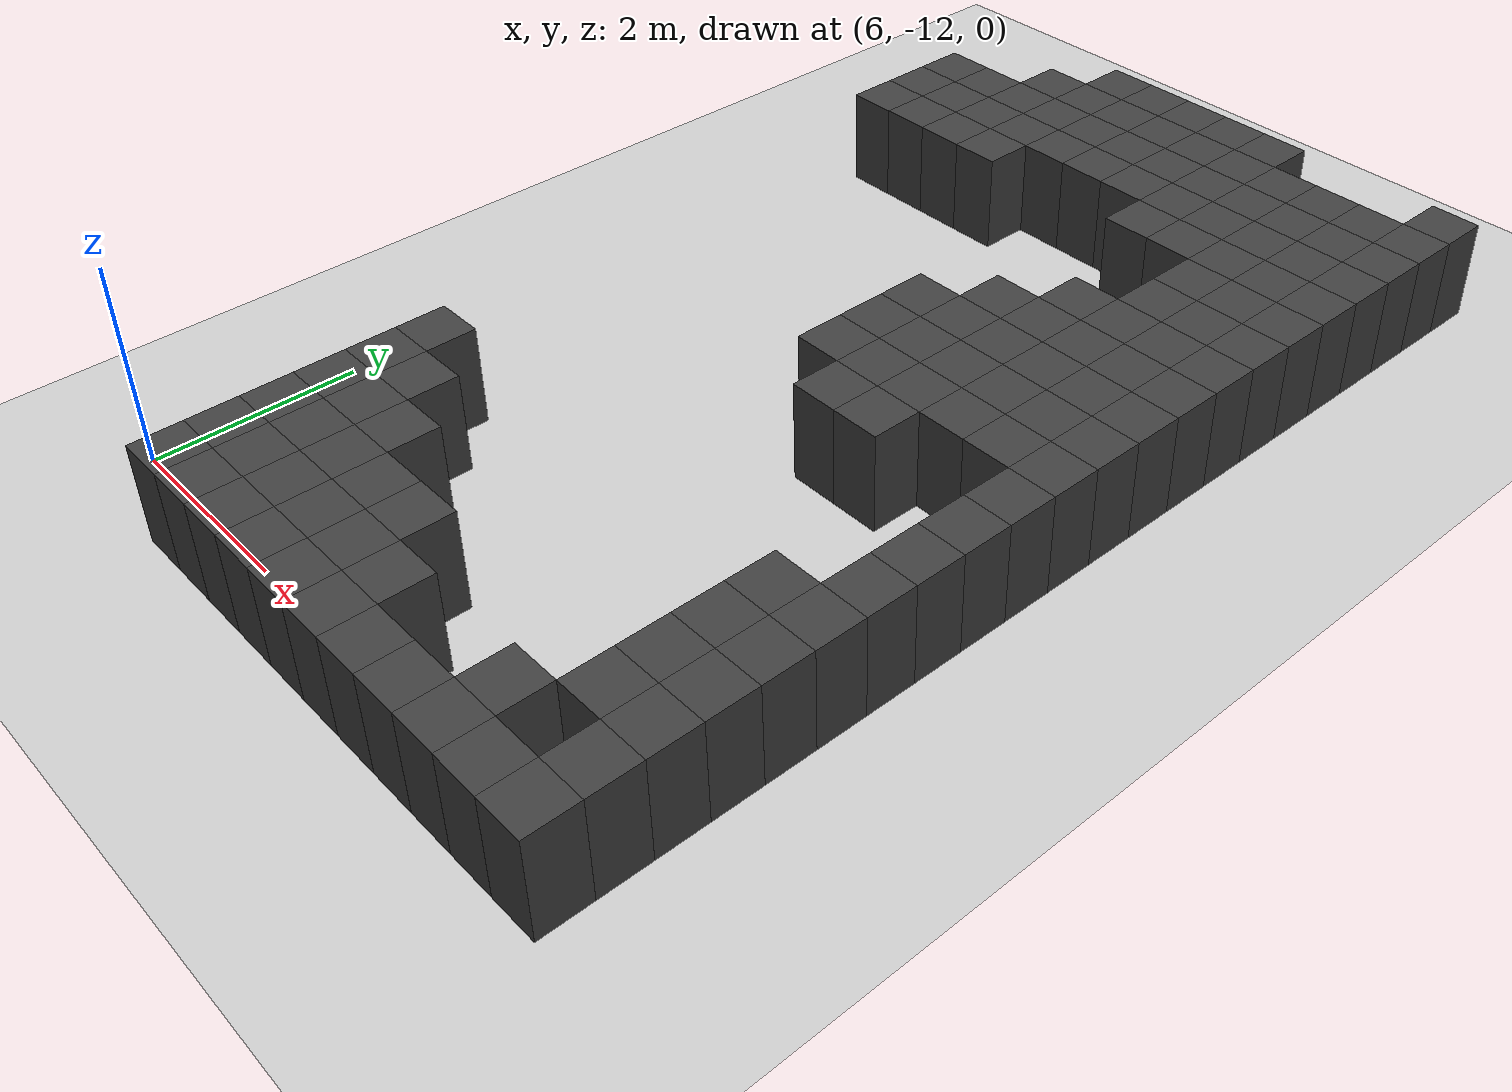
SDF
<sdf version="1.7">
 <world name="map_9713">
  <model name="ground_plane">
   <static>true</static>
   <link name="link">
    <collision name="collision">
     <geometry><plane><normal>0 0 1</normal><size>200 200</size></plane></geometry>
    </collision>
    <visual name="visual">
     <geometry><plane><normal>0 0 1</normal><size>200 200</size></plane></geometry>
     <material><ambient>0.8 0.8 0.8 1</ambient><diffuse>0.8 0.8 0.8 1</diffuse></material>
    </visual>
   </link>
  </model>
  <model name="maze_environment">
   <static>true</static>
   <link name="wall_527">
    <pose>8.250 -1.750 0.500 0 0 0</pose>
    <collision name="col"><geometry><box><size>0.5 0.5 1.0</size></box></geometry></collision>
    <visual name="vis">
     <geometry><box><size>0.5 0.5 1.0</size></box></geometry>
     <material><ambient>0.15 0.15 0.15 1</ambient><diffuse>0.25 0.25 0.25 1</diffuse></material>
    </visual>
   </link>
   <link name="wall_528">
    <pose>8.750 -1.750 0.500 0 0 0</pose>
    <collision name="col"><geometry><box><size>0.5 0.5 1.0</size></box></geometry></collision>
    <visual name="vis">
     <geometry><box><size>0.5 0.5 1.0</size></box></geometry>
     <material><ambient>0.15 0.15 0.15 1</ambient><diffuse>0.25 0.25 0.25 1</diffuse></material>
    </visual>
   </link>
   <link name="wall_529">
    <pose>9.250 -1.750 0.500 0 0 0</pose>
    <collision name="col"><geometry><box><size>0.5 0.5 1.0</size></box></geometry></collision>
    <visual name="vis">
     <geometry><box><size>0.5 0.5 1.0</size></box></geometry>
     <material><ambient>0.15 0.15 0.15 1</ambient><diffuse>0.25 0.25 0.25 1</diffuse></material>
    </visual>
   </link>
   <link name="wall_530">
    <pose>9.750 -1.750 0.500 0 0 0</pose>
    <collision name="col"><geometry><box><size>0.5 0.5 1.0</size></box></geometry></collision>
    <visual name="vis">
     <geometry><box><size>0.5 0.5 1.0</size></box></geometry>
     <material><ambient>0.15 0.15 0.15 1</ambient><diffuse>0.25 0.25 0.25 1</diffuse></material>
    </visual>
   </link>
   <link name="wall_531">
    <pose>10.250 -1.750 0.500 0 0 0</pose>
    <collision name="col"><geometry><box><size>0.5 0.5 1.0</size></box></geometry></collision>
    <visual name="vis">
     <geometry><box><size>0.5 0.5 1.0</size></box></geometry>
     <material><ambient>0.15 0.15 0.15 1</ambient><diffuse>0.25 0.25 0.25 1</diffuse></material>
    </visual>
   </link>
   <link name="wall_532">
    <pose>12.250 -1.750 0.500 0 0 0</pose>
    <collision name="col"><geometry><box><size>0.5 0.5 1.0</size></box></geometry></collision>
    <visual name="vis">
     <geometry><box><size>0.5 0.5 1.0</size></box></geometry>
     <material><ambient>0.15 0.15 0.15 1</ambient><diffuse>0.25 0.25 0.25 1</diffuse></material>
    </visual>
   </link>
   <link name="wall_547">
    <pose>7.750 -2.250 0.500 0 0 0</pose>
    <collision name="col"><geometry><box><size>0.5 0.5 1.0</size></box></geometry></collision>
    <visual name="vis">
     <geometry><box><size>0.5 0.5 1.0</size></box></geometry>
     <material><ambient>0.15 0.15 0.15 1</ambient><diffuse>0.25 0.25 0.25 1</diffuse></material>
    </visual>
   </link>
   <link name="wall_548">
    <pose>8.250 -2.250 0.500 0 0 0</pose>
    <collision name="col"><geometry><box><size>0.5 0.5 1.0</size></box></geometry></collision>
    <visual name="vis">
     <geometry><box><size>0.5 0.5 1.0</size></box></geometry>
     <material><ambient>0.15 0.15 0.15 1</ambient><diffuse>0.25 0.25 0.25 1</diffuse></material>
    </visual>
   </link>
   <link name="wall_549">
    <pose>8.750 -2.250 0.500 0 0 0</pose>
    <collision name="col"><geometry><box><size>0.5 0.5 1.0</size></box></geometry></collision>
    <visual name="vis">
     <geometry><box><size>0.5 0.5 1.0</size></box></geometry>
     <material><ambient>0.15 0.15 0.15 1</ambient><diffuse>0.25 0.25 0.25 1</diffuse></material>
    </visual>
   </link>
   <link name="wall_550">
    <pose>9.250 -2.250 0.500 0 0 0</pose>
    <collision name="col"><geometry><box><size>0.5 0.5 1.0</size></box></geometry></collision>
    <visual name="vis">
     <geometry><box><size>0.5 0.5 1.0</size></box></geometry>
     <material><ambient>0.15 0.15 0.15 1</ambient><diffuse>0.25 0.25 0.25 1</diffuse></material>
    </visual>
   </link>
   <link name="wall_551">
    <pose>9.750 -2.250 0.500 0 0 0</pose>
    <collision name="col"><geometry><box><size>0.5 0.5 1.0</size></box></geometry></collision>
    <visual name="vis">
     <geometry><box><size>0.5 0.5 1.0</size></box></geometry>
     <material><ambient>0.15 0.15 0.15 1</ambient><diffuse>0.25 0.25 0.25 1</diffuse></material>
    </visual>
   </link>
   <link name="wall_552">
    <pose>10.250 -2.250 0.500 0 0 0</pose>
    <collision name="col"><geometry><box><size>0.5 0.5 1.0</size></box></geometry></collision>
    <visual name="vis">
     <geometry><box><size>0.5 0.5 1.0</size></box></geometry>
     <material><ambient>0.15 0.15 0.15 1</ambient><diffuse>0.25 0.25 0.25 1</diffuse></material>
    </visual>
   </link>
   <link name="wall_553">
    <pose>10.750 -2.250 0.500 0 0 0</pose>
    <collision name="col"><geometry><box><size>0.5 0.5 1.0</size></box></geometry></collision>
    <visual name="vis">
     <geometry><box><size>0.5 0.5 1.0</size></box></geometry>
     <material><ambient>0.15 0.15 0.15 1</ambient><diffuse>0.25 0.25 0.25 1</diffuse></material>
    </visual>
   </link>
   <link name="wall_554">
    <pose>11.250 -2.250 0.500 0 0 0</pose>
    <collision name="col"><geometry><box><size>0.5 0.5 1.0</size></box></geometry></collision>
    <visual name="vis">
     <geometry><box><size>0.5 0.5 1.0</size></box></geometry>
     <material><ambient>0.15 0.15 0.15 1</ambient><diffuse>0.25 0.25 0.25 1</diffuse></material>
    </visual>
   </link>
   <link name="wall_555">
    <pose>11.750 -2.250 0.500 0 0 0</pose>
    <collision name="col"><geometry><box><size>0.5 0.5 1.0</size></box></geometry></collision>
    <visual name="vis">
     <geometry><box><size>0.5 0.5 1.0</size></box></geometry>
     <material><ambient>0.15 0.15 0.15 1</ambient><diffuse>0.25 0.25 0.25 1</diffuse></material>
    </visual>
   </link>
   <link name="wall_556">
    <pose>12.250 -2.250 0.500 0 0 0</pose>
    <collision name="col"><geometry><box><size>0.5 0.5 1.0</size></box></geometry></collision>
    <visual name="vis">
     <geometry><box><size>0.5 0.5 1.0</size></box></geometry>
     <material><ambient>0.15 0.15 0.15 1</ambient><diffuse>0.25 0.25 0.25 1</diffuse></material>
    </visual>
   </link>
   <link name="wall_567">
    <pose>6.750 -2.750 0.500 0 0 0</pose>
    <collision name="col"><geometry><box><size>0.5 0.5 1.0</size></box></geometry></collision>
    <visual name="vis">
     <geometry><box><size>0.5 0.5 1.0</size></box></geometry>
     <material><ambient>0.15 0.15 0.15 1</ambient><diffuse>0.25 0.25 0.25 1</diffuse></material>
    </visual>
   </link>
   <link name="wall_568">
    <pose>7.250 -2.750 0.500 0 0 0</pose>
    <collision name="col"><geometry><box><size>0.5 0.5 1.0</size></box></geometry></collision>
    <visual name="vis">
     <geometry><box><size>0.5 0.5 1.0</size></box></geometry>
     <material><ambient>0.15 0.15 0.15 1</ambient><diffuse>0.25 0.25 0.25 1</diffuse></material>
    </visual>
   </link>
   <link name="wall_569">
    <pose>7.750 -2.750 0.500 0 0 0</pose>
    <collision name="col"><geometry><box><size>0.5 0.5 1.0</size></box></geometry></collision>
    <visual name="vis">
     <geometry><box><size>0.5 0.5 1.0</size></box></geometry>
     <material><ambient>0.15 0.15 0.15 1</ambient><diffuse>0.25 0.25 0.25 1</diffuse></material>
    </visual>
   </link>
   <link name="wall_570">
    <pose>8.250 -2.750 0.500 0 0 0</pose>
    <collision name="col"><geometry><box><size>0.5 0.5 1.0</size></box></geometry></collision>
    <visual name="vis">
     <geometry><box><size>0.5 0.5 1.0</size></box></geometry>
     <material><ambient>0.15 0.15 0.15 1</ambient><diffuse>0.25 0.25 0.25 1</diffuse></material>
    </visual>
   </link>
   <link name="wall_571">
    <pose>8.750 -2.750 0.500 0 0 0</pose>
    <collision name="col"><geometry><box><size>0.5 0.5 1.0</size></box></geometry></collision>
    <visual name="vis">
     <geometry><box><size>0.5 0.5 1.0</size></box></geometry>
     <material><ambient>0.15 0.15 0.15 1</ambient><diffuse>0.25 0.25 0.25 1</diffuse></material>
    </visual>
   </link>
   <link name="wall_572">
    <pose>9.250 -2.750 0.500 0 0 0</pose>
    <collision name="col"><geometry><box><size>0.5 0.5 1.0</size></box></geometry></collision>
    <visual name="vis">
     <geometry><box><size>0.5 0.5 1.0</size></box></geometry>
     <material><ambient>0.15 0.15 0.15 1</ambient><diffuse>0.25 0.25 0.25 1</diffuse></material>
    </visual>
   </link>
   <link name="wall_573">
    <pose>9.750 -2.750 0.500 0 0 0</pose>
    <collision name="col"><geometry><box><size>0.5 0.5 1.0</size></box></geometry></collision>
    <visual name="vis">
     <geometry><box><size>0.5 0.5 1.0</size></box></geometry>
     <material><ambient>0.15 0.15 0.15 1</ambient><diffuse>0.25 0.25 0.25 1</diffuse></material>
    </visual>
   </link>
   <link name="wall_574">
    <pose>10.250 -2.750 0.500 0 0 0</pose>
    <collision name="col"><geometry><box><size>0.5 0.5 1.0</size></box></geometry></collision>
    <visual name="vis">
     <geometry><box><size>0.5 0.5 1.0</size></box></geometry>
     <material><ambient>0.15 0.15 0.15 1</ambient><diffuse>0.25 0.25 0.25 1</diffuse></material>
    </visual>
   </link>
   <link name="wall_575">
    <pose>10.750 -2.750 0.500 0 0 0</pose>
    <collision name="col"><geometry><box><size>0.5 0.5 1.0</size></box></geometry></collision>
    <visual name="vis">
     <geometry><box><size>0.5 0.5 1.0</size></box></geometry>
     <material><ambient>0.15 0.15 0.15 1</ambient><diffuse>0.25 0.25 0.25 1</diffuse></material>
    </visual>
   </link>
   <link name="wall_576">
    <pose>11.250 -2.750 0.500 0 0 0</pose>
    <collision name="col"><geometry><box><size>0.5 0.5 1.0</size></box></geometry></collision>
    <visual name="vis">
     <geometry><box><size>0.5 0.5 1.0</size></box></geometry>
     <material><ambient>0.15 0.15 0.15 1</ambient><diffuse>0.25 0.25 0.25 1</diffuse></material>
    </visual>
   </link>
   <link name="wall_577">
    <pose>11.750 -2.750 0.500 0 0 0</pose>
    <collision name="col"><geometry><box><size>0.5 0.5 1.0</size></box></geometry></collision>
    <visual name="vis">
     <geometry><box><size>0.5 0.5 1.0</size></box></geometry>
     <material><ambient>0.15 0.15 0.15 1</ambient><diffuse>0.25 0.25 0.25 1</diffuse></material>
    </visual>
   </link>
   <link name="wall_578">
    <pose>12.250 -2.750 0.500 0 0 0</pose>
    <collision name="col"><geometry><box><size>0.5 0.5 1.0</size></box></geometry></collision>
    <visual name="vis">
     <geometry><box><size>0.5 0.5 1.0</size></box></geometry>
     <material><ambient>0.15 0.15 0.15 1</ambient><diffuse>0.25 0.25 0.25 1</diffuse></material>
    </visual>
   </link>
   <link name="wall_589">
    <pose>6.750 -3.250 0.500 0 0 0</pose>
    <collision name="col"><geometry><box><size>0.5 0.5 1.0</size></box></geometry></collision>
    <visual name="vis">
     <geometry><box><size>0.5 0.5 1.0</size></box></geometry>
     <material><ambient>0.15 0.15 0.15 1</ambient><diffuse>0.25 0.25 0.25 1</diffuse></material>
    </visual>
   </link>
   <link name="wall_590">
    <pose>7.250 -3.250 0.500 0 0 0</pose>
    <collision name="col"><geometry><box><size>0.5 0.5 1.0</size></box></geometry></collision>
    <visual name="vis">
     <geometry><box><size>0.5 0.5 1.0</size></box></geometry>
     <material><ambient>0.15 0.15 0.15 1</ambient><diffuse>0.25 0.25 0.25 1</diffuse></material>
    </visual>
   </link>
   <link name="wall_591">
    <pose>7.750 -3.250 0.500 0 0 0</pose>
    <collision name="col"><geometry><box><size>0.5 0.5 1.0</size></box></geometry></collision>
    <visual name="vis">
     <geometry><box><size>0.5 0.5 1.0</size></box></geometry>
     <material><ambient>0.15 0.15 0.15 1</ambient><diffuse>0.25 0.25 0.25 1</diffuse></material>
    </visual>
   </link>
   <link name="wall_592">
    <pose>8.250 -3.250 0.500 0 0 0</pose>
    <collision name="col"><geometry><box><size>0.5 0.5 1.0</size></box></geometry></collision>
    <visual name="vis">
     <geometry><box><size>0.5 0.5 1.0</size></box></geometry>
     <material><ambient>0.15 0.15 0.15 1</ambient><diffuse>0.25 0.25 0.25 1</diffuse></material>
    </visual>
   </link>
   <link name="wall_593">
    <pose>8.750 -3.250 0.500 0 0 0</pose>
    <collision name="col"><geometry><box><size>0.5 0.5 1.0</size></box></geometry></collision>
    <visual name="vis">
     <geometry><box><size>0.5 0.5 1.0</size></box></geometry>
     <material><ambient>0.15 0.15 0.15 1</ambient><diffuse>0.25 0.25 0.25 1</diffuse></material>
    </visual>
   </link>
   <link name="wall_594">
    <pose>9.250 -3.250 0.500 0 0 0</pose>
    <collision name="col"><geometry><box><size>0.5 0.5 1.0</size></box></geometry></collision>
    <visual name="vis">
     <geometry><box><size>0.5 0.5 1.0</size></box></geometry>
     <material><ambient>0.15 0.15 0.15 1</ambient><diffuse>0.25 0.25 0.25 1</diffuse></material>
    </visual>
   </link>
   <link name="wall_595">
    <pose>9.750 -3.250 0.500 0 0 0</pose>
    <collision name="col"><geometry><box><size>0.5 0.5 1.0</size></box></geometry></collision>
    <visual name="vis">
     <geometry><box><size>0.5 0.5 1.0</size></box></geometry>
     <material><ambient>0.15 0.15 0.15 1</ambient><diffuse>0.25 0.25 0.25 1</diffuse></material>
    </visual>
   </link>
   <link name="wall_596">
    <pose>10.250 -3.250 0.500 0 0 0</pose>
    <collision name="col"><geometry><box><size>0.5 0.5 1.0</size></box></geometry></collision>
    <visual name="vis">
     <geometry><box><size>0.5 0.5 1.0</size></box></geometry>
     <material><ambient>0.15 0.15 0.15 1</ambient><diffuse>0.25 0.25 0.25 1</diffuse></material>
    </visual>
   </link>
   <link name="wall_597">
    <pose>10.750 -3.250 0.500 0 0 0</pose>
    <collision name="col"><geometry><box><size>0.5 0.5 1.0</size></box></geometry></collision>
    <visual name="vis">
     <geometry><box><size>0.5 0.5 1.0</size></box></geometry>
     <material><ambient>0.15 0.15 0.15 1</ambient><diffuse>0.25 0.25 0.25 1</diffuse></material>
    </visual>
   </link>
   <link name="wall_598">
    <pose>11.250 -3.250 0.500 0 0 0</pose>
    <collision name="col"><geometry><box><size>0.5 0.5 1.0</size></box></geometry></collision>
    <visual name="vis">
     <geometry><box><size>0.5 0.5 1.0</size></box></geometry>
     <material><ambient>0.15 0.15 0.15 1</ambient><diffuse>0.25 0.25 0.25 1</diffuse></material>
    </visual>
   </link>
   <link name="wall_599">
    <pose>11.750 -3.250 0.500 0 0 0</pose>
    <collision name="col"><geometry><box><size>0.5 0.5 1.0</size></box></geometry></collision>
    <visual name="vis">
     <geometry><box><size>0.5 0.5 1.0</size></box></geometry>
     <material><ambient>0.15 0.15 0.15 1</ambient><diffuse>0.25 0.25 0.25 1</diffuse></material>
    </visual>
   </link>
   <link name="wall_600">
    <pose>12.250 -3.250 0.500 0 0 0</pose>
    <collision name="col"><geometry><box><size>0.5 0.5 1.0</size></box></geometry></collision>
    <visual name="vis">
     <geometry><box><size>0.5 0.5 1.0</size></box></geometry>
     <material><ambient>0.15 0.15 0.15 1</ambient><diffuse>0.25 0.25 0.25 1</diffuse></material>
    </visual>
   </link>
   <link name="wall_612">
    <pose>6.750 -3.750 0.500 0 0 0</pose>
    <collision name="col"><geometry><box><size>0.5 0.5 1.0</size></box></geometry></collision>
    <visual name="vis">
     <geometry><box><size>0.5 0.5 1.0</size></box></geometry>
     <material><ambient>0.15 0.15 0.15 1</ambient><diffuse>0.25 0.25 0.25 1</diffuse></material>
    </visual>
   </link>
   <link name="wall_613">
    <pose>7.250 -3.750 0.500 0 0 0</pose>
    <collision name="col"><geometry><box><size>0.5 0.5 1.0</size></box></geometry></collision>
    <visual name="vis">
     <geometry><box><size>0.5 0.5 1.0</size></box></geometry>
     <material><ambient>0.15 0.15 0.15 1</ambient><diffuse>0.25 0.25 0.25 1</diffuse></material>
    </visual>
   </link>
   <link name="wall_614">
    <pose>7.750 -3.750 0.500 0 0 0</pose>
    <collision name="col"><geometry><box><size>0.5 0.5 1.0</size></box></geometry></collision>
    <visual name="vis">
     <geometry><box><size>0.5 0.5 1.0</size></box></geometry>
     <material><ambient>0.15 0.15 0.15 1</ambient><diffuse>0.25 0.25 0.25 1</diffuse></material>
    </visual>
   </link>
   <link name="wall_615">
    <pose>8.250 -3.750 0.500 0 0 0</pose>
    <collision name="col"><geometry><box><size>0.5 0.5 1.0</size></box></geometry></collision>
    <visual name="vis">
     <geometry><box><size>0.5 0.5 1.0</size></box></geometry>
     <material><ambient>0.15 0.15 0.15 1</ambient><diffuse>0.25 0.25 0.25 1</diffuse></material>
    </visual>
   </link>
   <link name="wall_616">
    <pose>10.250 -3.750 0.500 0 0 0</pose>
    <collision name="col"><geometry><box><size>0.5 0.5 1.0</size></box></geometry></collision>
    <visual name="vis">
     <geometry><box><size>0.5 0.5 1.0</size></box></geometry>
     <material><ambient>0.15 0.15 0.15 1</ambient><diffuse>0.25 0.25 0.25 1</diffuse></material>
    </visual>
   </link>
   <link name="wall_617">
    <pose>10.750 -3.750 0.500 0 0 0</pose>
    <collision name="col"><geometry><box><size>0.5 0.5 1.0</size></box></geometry></collision>
    <visual name="vis">
     <geometry><box><size>0.5 0.5 1.0</size></box></geometry>
     <material><ambient>0.15 0.15 0.15 1</ambient><diffuse>0.25 0.25 0.25 1</diffuse></material>
    </visual>
   </link>
   <link name="wall_618">
    <pose>11.250 -3.750 0.500 0 0 0</pose>
    <collision name="col"><geometry><box><size>0.5 0.5 1.0</size></box></geometry></collision>
    <visual name="vis">
     <geometry><box><size>0.5 0.5 1.0</size></box></geometry>
     <material><ambient>0.15 0.15 0.15 1</ambient><diffuse>0.25 0.25 0.25 1</diffuse></material>
    </visual>
   </link>
   <link name="wall_619">
    <pose>11.750 -3.750 0.500 0 0 0</pose>
    <collision name="col"><geometry><box><size>0.5 0.5 1.0</size></box></geometry></collision>
    <visual name="vis">
     <geometry><box><size>0.5 0.5 1.0</size></box></geometry>
     <material><ambient>0.15 0.15 0.15 1</ambient><diffuse>0.25 0.25 0.25 1</diffuse></material>
    </visual>
   </link>
   <link name="wall_620">
    <pose>12.250 -3.750 0.500 0 0 0</pose>
    <collision name="col"><geometry><box><size>0.5 0.5 1.0</size></box></geometry></collision>
    <visual name="vis">
     <geometry><box><size>0.5 0.5 1.0</size></box></geometry>
     <material><ambient>0.15 0.15 0.15 1</ambient><diffuse>0.25 0.25 0.25 1</diffuse></material>
    </visual>
   </link>
   <link name="wall_634">
    <pose>11.250 -4.250 0.500 0 0 0</pose>
    <collision name="col"><geometry><box><size>0.5 0.5 1.0</size></box></geometry></collision>
    <visual name="vis">
     <geometry><box><size>0.5 0.5 1.0</size></box></geometry>
     <material><ambient>0.15 0.15 0.15 1</ambient><diffuse>0.25 0.25 0.25 1</diffuse></material>
    </visual>
   </link>
   <link name="wall_635">
    <pose>11.750 -4.250 0.500 0 0 0</pose>
    <collision name="col"><geometry><box><size>0.5 0.5 1.0</size></box></geometry></collision>
    <visual name="vis">
     <geometry><box><size>0.5 0.5 1.0</size></box></geometry>
     <material><ambient>0.15 0.15 0.15 1</ambient><diffuse>0.25 0.25 0.25 1</diffuse></material>
    </visual>
   </link>
   <link name="wall_636">
    <pose>12.250 -4.250 0.500 0 0 0</pose>
    <collision name="col"><geometry><box><size>0.5 0.5 1.0</size></box></geometry></collision>
    <visual name="vis">
     <geometry><box><size>0.5 0.5 1.0</size></box></geometry>
     <material><ambient>0.15 0.15 0.15 1</ambient><diffuse>0.25 0.25 0.25 1</diffuse></material>
    </visual>
   </link>
   <link name="wall_649">
    <pose>11.250 -4.750 0.500 0 0 0</pose>
    <collision name="col"><geometry><box><size>0.5 0.5 1.0</size></box></geometry></collision>
    <visual name="vis">
     <geometry><box><size>0.5 0.5 1.0</size></box></geometry>
     <material><ambient>0.15 0.15 0.15 1</ambient><diffuse>0.25 0.25 0.25 1</diffuse></material>
    </visual>
   </link>
   <link name="wall_650">
    <pose>11.750 -4.750 0.500 0 0 0</pose>
    <collision name="col"><geometry><box><size>0.5 0.5 1.0</size></box></geometry></collision>
    <visual name="vis">
     <geometry><box><size>0.5 0.5 1.0</size></box></geometry>
     <material><ambient>0.15 0.15 0.15 1</ambient><diffuse>0.25 0.25 0.25 1</diffuse></material>
    </visual>
   </link>
   <link name="wall_651">
    <pose>12.250 -4.750 0.500 0 0 0</pose>
    <collision name="col"><geometry><box><size>0.5 0.5 1.0</size></box></geometry></collision>
    <visual name="vis">
     <geometry><box><size>0.5 0.5 1.0</size></box></geometry>
     <material><ambient>0.15 0.15 0.15 1</ambient><diffuse>0.25 0.25 0.25 1</diffuse></material>
    </visual>
   </link>
   <link name="wall_664">
    <pose>10.750 -5.250 0.500 0 0 0</pose>
    <collision name="col"><geometry><box><size>0.5 0.5 1.0</size></box></geometry></collision>
    <visual name="vis">
     <geometry><box><size>0.5 0.5 1.0</size></box></geometry>
     <material><ambient>0.15 0.15 0.15 1</ambient><diffuse>0.25 0.25 0.25 1</diffuse></material>
    </visual>
   </link>
   <link name="wall_665">
    <pose>11.250 -5.250 0.500 0 0 0</pose>
    <collision name="col"><geometry><box><size>0.5 0.5 1.0</size></box></geometry></collision>
    <visual name="vis">
     <geometry><box><size>0.5 0.5 1.0</size></box></geometry>
     <material><ambient>0.15 0.15 0.15 1</ambient><diffuse>0.25 0.25 0.25 1</diffuse></material>
    </visual>
   </link>
   <link name="wall_666">
    <pose>11.750 -5.250 0.500 0 0 0</pose>
    <collision name="col"><geometry><box><size>0.5 0.5 1.0</size></box></geometry></collision>
    <visual name="vis">
     <geometry><box><size>0.5 0.5 1.0</size></box></geometry>
     <material><ambient>0.15 0.15 0.15 1</ambient><diffuse>0.25 0.25 0.25 1</diffuse></material>
    </visual>
   </link>
   <link name="wall_667">
    <pose>12.250 -5.250 0.500 0 0 0</pose>
    <collision name="col"><geometry><box><size>0.5 0.5 1.0</size></box></geometry></collision>
    <visual name="vis">
     <geometry><box><size>0.5 0.5 1.0</size></box></geometry>
     <material><ambient>0.15 0.15 0.15 1</ambient><diffuse>0.25 0.25 0.25 1</diffuse></material>
    </visual>
   </link>
   <link name="wall_682">
    <pose>10.250 -5.750 0.500 0 0 0</pose>
    <collision name="col"><geometry><box><size>0.5 0.5 1.0</size></box></geometry></collision>
    <visual name="vis">
     <geometry><box><size>0.5 0.5 1.0</size></box></geometry>
     <material><ambient>0.15 0.15 0.15 1</ambient><diffuse>0.25 0.25 0.25 1</diffuse></material>
    </visual>
   </link>
   <link name="wall_683">
    <pose>10.750 -5.750 0.500 0 0 0</pose>
    <collision name="col"><geometry><box><size>0.5 0.5 1.0</size></box></geometry></collision>
    <visual name="vis">
     <geometry><box><size>0.5 0.5 1.0</size></box></geometry>
     <material><ambient>0.15 0.15 0.15 1</ambient><diffuse>0.25 0.25 0.25 1</diffuse></material>
    </visual>
   </link>
   <link name="wall_684">
    <pose>11.250 -5.750 0.500 0 0 0</pose>
    <collision name="col"><geometry><box><size>0.5 0.5 1.0</size></box></geometry></collision>
    <visual name="vis">
     <geometry><box><size>0.5 0.5 1.0</size></box></geometry>
     <material><ambient>0.15 0.15 0.15 1</ambient><diffuse>0.25 0.25 0.25 1</diffuse></material>
    </visual>
   </link>
   <link name="wall_685">
    <pose>11.750 -5.750 0.500 0 0 0</pose>
    <collision name="col"><geometry><box><size>0.5 0.5 1.0</size></box></geometry></collision>
    <visual name="vis">
     <geometry><box><size>0.5 0.5 1.0</size></box></geometry>
     <material><ambient>0.15 0.15 0.15 1</ambient><diffuse>0.25 0.25 0.25 1</diffuse></material>
    </visual>
   </link>
   <link name="wall_686">
    <pose>12.250 -5.750 0.500 0 0 0</pose>
    <collision name="col"><geometry><box><size>0.5 0.5 1.0</size></box></geometry></collision>
    <visual name="vis">
     <geometry><box><size>0.5 0.5 1.0</size></box></geometry>
     <material><ambient>0.15 0.15 0.15 1</ambient><diffuse>0.25 0.25 0.25 1</diffuse></material>
    </visual>
   </link>
   <link name="wall_705">
    <pose>9.750 -6.250 0.500 0 0 0</pose>
    <collision name="col"><geometry><box><size>0.5 0.5 1.0</size></box></geometry></collision>
    <visual name="vis">
     <geometry><box><size>0.5 0.5 1.0</size></box></geometry>
     <material><ambient>0.15 0.15 0.15 1</ambient><diffuse>0.25 0.25 0.25 1</diffuse></material>
    </visual>
   </link>
   <link name="wall_706">
    <pose>10.250 -6.250 0.500 0 0 0</pose>
    <collision name="col"><geometry><box><size>0.5 0.5 1.0</size></box></geometry></collision>
    <visual name="vis">
     <geometry><box><size>0.5 0.5 1.0</size></box></geometry>
     <material><ambient>0.15 0.15 0.15 1</ambient><diffuse>0.25 0.25 0.25 1</diffuse></material>
    </visual>
   </link>
   <link name="wall_707">
    <pose>10.750 -6.250 0.500 0 0 0</pose>
    <collision name="col"><geometry><box><size>0.5 0.5 1.0</size></box></geometry></collision>
    <visual name="vis">
     <geometry><box><size>0.5 0.5 1.0</size></box></geometry>
     <material><ambient>0.15 0.15 0.15 1</ambient><diffuse>0.25 0.25 0.25 1</diffuse></material>
    </visual>
   </link>
   <link name="wall_708">
    <pose>11.250 -6.250 0.500 0 0 0</pose>
    <collision name="col"><geometry><box><size>0.5 0.5 1.0</size></box></geometry></collision>
    <visual name="vis">
     <geometry><box><size>0.5 0.5 1.0</size></box></geometry>
     <material><ambient>0.15 0.15 0.15 1</ambient><diffuse>0.25 0.25 0.25 1</diffuse></material>
    </visual>
   </link>
   <link name="wall_709">
    <pose>11.750 -6.250 0.500 0 0 0</pose>
    <collision name="col"><geometry><box><size>0.5 0.5 1.0</size></box></geometry></collision>
    <visual name="vis">
     <geometry><box><size>0.5 0.5 1.0</size></box></geometry>
     <material><ambient>0.15 0.15 0.15 1</ambient><diffuse>0.25 0.25 0.25 1</diffuse></material>
    </visual>
   </link>
   <link name="wall_710">
    <pose>12.250 -6.250 0.500 0 0 0</pose>
    <collision name="col"><geometry><box><size>0.5 0.5 1.0</size></box></geometry></collision>
    <visual name="vis">
     <geometry><box><size>0.5 0.5 1.0</size></box></geometry>
     <material><ambient>0.15 0.15 0.15 1</ambient><diffuse>0.25 0.25 0.25 1</diffuse></material>
    </visual>
   </link>
   <link name="wall_735">
    <pose>9.750 -6.750 0.500 0 0 0</pose>
    <collision name="col"><geometry><box><size>0.5 0.5 1.0</size></box></geometry></collision>
    <visual name="vis">
     <geometry><box><size>0.5 0.5 1.0</size></box></geometry>
     <material><ambient>0.15 0.15 0.15 1</ambient><diffuse>0.25 0.25 0.25 1</diffuse></material>
    </visual>
   </link>
   <link name="wall_736">
    <pose>10.250 -6.750 0.500 0 0 0</pose>
    <collision name="col"><geometry><box><size>0.5 0.5 1.0</size></box></geometry></collision>
    <visual name="vis">
     <geometry><box><size>0.5 0.5 1.0</size></box></geometry>
     <material><ambient>0.15 0.15 0.15 1</ambient><diffuse>0.25 0.25 0.25 1</diffuse></material>
    </visual>
   </link>
   <link name="wall_737">
    <pose>10.750 -6.750 0.500 0 0 0</pose>
    <collision name="col"><geometry><box><size>0.5 0.5 1.0</size></box></geometry></collision>
    <visual name="vis">
     <geometry><box><size>0.5 0.5 1.0</size></box></geometry>
     <material><ambient>0.15 0.15 0.15 1</ambient><diffuse>0.25 0.25 0.25 1</diffuse></material>
    </visual>
   </link>
   <link name="wall_738">
    <pose>11.250 -6.750 0.500 0 0 0</pose>
    <collision name="col"><geometry><box><size>0.5 0.5 1.0</size></box></geometry></collision>
    <visual name="vis">
     <geometry><box><size>0.5 0.5 1.0</size></box></geometry>
     <material><ambient>0.15 0.15 0.15 1</ambient><diffuse>0.25 0.25 0.25 1</diffuse></material>
    </visual>
   </link>
   <link name="wall_739">
    <pose>11.750 -6.750 0.500 0 0 0</pose>
    <collision name="col"><geometry><box><size>0.5 0.5 1.0</size></box></geometry></collision>
    <visual name="vis">
     <geometry><box><size>0.5 0.5 1.0</size></box></geometry>
     <material><ambient>0.15 0.15 0.15 1</ambient><diffuse>0.25 0.25 0.25 1</diffuse></material>
    </visual>
   </link>
   <link name="wall_740">
    <pose>12.250 -6.750 0.500 0 0 0</pose>
    <collision name="col"><geometry><box><size>0.5 0.5 1.0</size></box></geometry></collision>
    <visual name="vis">
     <geometry><box><size>0.5 0.5 1.0</size></box></geometry>
     <material><ambient>0.15 0.15 0.15 1</ambient><diffuse>0.25 0.25 0.25 1</diffuse></material>
    </visual>
   </link>
   <link name="wall_766">
    <pose>9.750 -7.250 0.500 0 0 0</pose>
    <collision name="col"><geometry><box><size>0.5 0.5 1.0</size></box></geometry></collision>
    <visual name="vis">
     <geometry><box><size>0.5 0.5 1.0</size></box></geometry>
     <material><ambient>0.15 0.15 0.15 1</ambient><diffuse>0.25 0.25 0.25 1</diffuse></material>
    </visual>
   </link>
   <link name="wall_767">
    <pose>10.250 -7.250 0.500 0 0 0</pose>
    <collision name="col"><geometry><box><size>0.5 0.5 1.0</size></box></geometry></collision>
    <visual name="vis">
     <geometry><box><size>0.5 0.5 1.0</size></box></geometry>
     <material><ambient>0.15 0.15 0.15 1</ambient><diffuse>0.25 0.25 0.25 1</diffuse></material>
    </visual>
   </link>
   <link name="wall_768">
    <pose>10.750 -7.250 0.500 0 0 0</pose>
    <collision name="col"><geometry><box><size>0.5 0.5 1.0</size></box></geometry></collision>
    <visual name="vis">
     <geometry><box><size>0.5 0.5 1.0</size></box></geometry>
     <material><ambient>0.15 0.15 0.15 1</ambient><diffuse>0.25 0.25 0.25 1</diffuse></material>
    </visual>
   </link>
   <link name="wall_769">
    <pose>11.250 -7.250 0.500 0 0 0</pose>
    <collision name="col"><geometry><box><size>0.5 0.5 1.0</size></box></geometry></collision>
    <visual name="vis">
     <geometry><box><size>0.5 0.5 1.0</size></box></geometry>
     <material><ambient>0.15 0.15 0.15 1</ambient><diffuse>0.25 0.25 0.25 1</diffuse></material>
    </visual>
   </link>
   <link name="wall_770">
    <pose>11.750 -7.250 0.500 0 0 0</pose>
    <collision name="col"><geometry><box><size>0.5 0.5 1.0</size></box></geometry></collision>
    <visual name="vis">
     <geometry><box><size>0.5 0.5 1.0</size></box></geometry>
     <material><ambient>0.15 0.15 0.15 1</ambient><diffuse>0.25 0.25 0.25 1</diffuse></material>
    </visual>
   </link>
   <link name="wall_771">
    <pose>12.250 -7.250 0.500 0 0 0</pose>
    <collision name="col"><geometry><box><size>0.5 0.5 1.0</size></box></geometry></collision>
    <visual name="vis">
     <geometry><box><size>0.5 0.5 1.0</size></box></geometry>
     <material><ambient>0.15 0.15 0.15 1</ambient><diffuse>0.25 0.25 0.25 1</diffuse></material>
    </visual>
   </link>
   <link name="wall_797">
    <pose>10.250 -7.750 0.500 0 0 0</pose>
    <collision name="col"><geometry><box><size>0.5 0.5 1.0</size></box></geometry></collision>
    <visual name="vis">
     <geometry><box><size>0.5 0.5 1.0</size></box></geometry>
     <material><ambient>0.15 0.15 0.15 1</ambient><diffuse>0.25 0.25 0.25 1</diffuse></material>
    </visual>
   </link>
   <link name="wall_798">
    <pose>10.750 -7.750 0.500 0 0 0</pose>
    <collision name="col"><geometry><box><size>0.5 0.5 1.0</size></box></geometry></collision>
    <visual name="vis">
     <geometry><box><size>0.5 0.5 1.0</size></box></geometry>
     <material><ambient>0.15 0.15 0.15 1</ambient><diffuse>0.25 0.25 0.25 1</diffuse></material>
    </visual>
   </link>
   <link name="wall_799">
    <pose>12.250 -7.750 0.500 0 0 0</pose>
    <collision name="col"><geometry><box><size>0.5 0.5 1.0</size></box></geometry></collision>
    <visual name="vis">
     <geometry><box><size>0.5 0.5 1.0</size></box></geometry>
     <material><ambient>0.15 0.15 0.15 1</ambient><diffuse>0.25 0.25 0.25 1</diffuse></material>
    </visual>
   </link>
   <link name="wall_821">
    <pose>12.250 -8.250 0.500 0 0 0</pose>
    <collision name="col"><geometry><box><size>0.5 0.5 1.0</size></box></geometry></collision>
    <visual name="vis">
     <geometry><box><size>0.5 0.5 1.0</size></box></geometry>
     <material><ambient>0.15 0.15 0.15 1</ambient><diffuse>0.25 0.25 0.25 1</diffuse></material>
    </visual>
   </link>
   <link name="wall_840">
    <pose>12.250 -8.750 0.500 0 0 0</pose>
    <collision name="col"><geometry><box><size>0.5 0.5 1.0</size></box></geometry></collision>
    <visual name="vis">
     <geometry><box><size>0.5 0.5 1.0</size></box></geometry>
     <material><ambient>0.15 0.15 0.15 1</ambient><diffuse>0.25 0.25 0.25 1</diffuse></material>
    </visual>
   </link>
   <link name="wall_857">
    <pose>12.250 -9.250 0.500 0 0 0</pose>
    <collision name="col"><geometry><box><size>0.5 0.5 1.0</size></box></geometry></collision>
    <visual name="vis">
     <geometry><box><size>0.5 0.5 1.0</size></box></geometry>
     <material><ambient>0.15 0.15 0.15 1</ambient><diffuse>0.25 0.25 0.25 1</diffuse></material>
    </visual>
   </link>
   <link name="wall_874">
    <pose>7.250 -9.750 0.500 0 0 0</pose>
    <collision name="col"><geometry><box><size>0.5 0.5 1.0</size></box></geometry></collision>
    <visual name="vis">
     <geometry><box><size>0.5 0.5 1.0</size></box></geometry>
     <material><ambient>0.15 0.15 0.15 1</ambient><diffuse>0.25 0.25 0.25 1</diffuse></material>
    </visual>
   </link>
   <link name="wall_875">
    <pose>11.750 -9.750 0.500 0 0 0</pose>
    <collision name="col"><geometry><box><size>0.5 0.5 1.0</size></box></geometry></collision>
    <visual name="vis">
     <geometry><box><size>0.5 0.5 1.0</size></box></geometry>
     <material><ambient>0.15 0.15 0.15 1</ambient><diffuse>0.25 0.25 0.25 1</diffuse></material>
    </visual>
   </link>
   <link name="wall_876">
    <pose>12.250 -9.750 0.500 0 0 0</pose>
    <collision name="col"><geometry><box><size>0.5 0.5 1.0</size></box></geometry></collision>
    <visual name="vis">
     <geometry><box><size>0.5 0.5 1.0</size></box></geometry>
     <material><ambient>0.15 0.15 0.15 1</ambient><diffuse>0.25 0.25 0.25 1</diffuse></material>
    </visual>
   </link>
   <link name="wall_890">
    <pose>7.250 -10.250 0.500 0 0 0</pose>
    <collision name="col"><geometry><box><size>0.5 0.5 1.0</size></box></geometry></collision>
    <visual name="vis">
     <geometry><box><size>0.5 0.5 1.0</size></box></geometry>
     <material><ambient>0.15 0.15 0.15 1</ambient><diffuse>0.25 0.25 0.25 1</diffuse></material>
    </visual>
   </link>
   <link name="wall_891">
    <pose>7.750 -10.250 0.500 0 0 0</pose>
    <collision name="col"><geometry><box><size>0.5 0.5 1.0</size></box></geometry></collision>
    <visual name="vis">
     <geometry><box><size>0.5 0.5 1.0</size></box></geometry>
     <material><ambient>0.15 0.15 0.15 1</ambient><diffuse>0.25 0.25 0.25 1</diffuse></material>
    </visual>
   </link>
   <link name="wall_892">
    <pose>11.750 -10.250 0.500 0 0 0</pose>
    <collision name="col"><geometry><box><size>0.5 0.5 1.0</size></box></geometry></collision>
    <visual name="vis">
     <geometry><box><size>0.5 0.5 1.0</size></box></geometry>
     <material><ambient>0.15 0.15 0.15 1</ambient><diffuse>0.25 0.25 0.25 1</diffuse></material>
    </visual>
   </link>
   <link name="wall_893">
    <pose>12.250 -10.250 0.500 0 0 0</pose>
    <collision name="col"><geometry><box><size>0.5 0.5 1.0</size></box></geometry></collision>
    <visual name="vis">
     <geometry><box><size>0.5 0.5 1.0</size></box></geometry>
     <material><ambient>0.15 0.15 0.15 1</ambient><diffuse>0.25 0.25 0.25 1</diffuse></material>
    </visual>
   </link>
   <link name="wall_905">
    <pose>7.250 -10.750 0.500 0 0 0</pose>
    <collision name="col"><geometry><box><size>0.5 0.5 1.0</size></box></geometry></collision>
    <visual name="vis">
     <geometry><box><size>0.5 0.5 1.0</size></box></geometry>
     <material><ambient>0.15 0.15 0.15 1</ambient><diffuse>0.25 0.25 0.25 1</diffuse></material>
    </visual>
   </link>
   <link name="wall_906">
    <pose>7.750 -10.750 0.500 0 0 0</pose>
    <collision name="col"><geometry><box><size>0.5 0.5 1.0</size></box></geometry></collision>
    <visual name="vis">
     <geometry><box><size>0.5 0.5 1.0</size></box></geometry>
     <material><ambient>0.15 0.15 0.15 1</ambient><diffuse>0.25 0.25 0.25 1</diffuse></material>
    </visual>
   </link>
   <link name="wall_907">
    <pose>8.250 -10.750 0.500 0 0 0</pose>
    <collision name="col"><geometry><box><size>0.5 0.5 1.0</size></box></geometry></collision>
    <visual name="vis">
     <geometry><box><size>0.5 0.5 1.0</size></box></geometry>
     <material><ambient>0.15 0.15 0.15 1</ambient><diffuse>0.25 0.25 0.25 1</diffuse></material>
    </visual>
   </link>
   <link name="wall_908">
    <pose>11.750 -10.750 0.500 0 0 0</pose>
    <collision name="col"><geometry><box><size>0.5 0.5 1.0</size></box></geometry></collision>
    <visual name="vis">
     <geometry><box><size>0.5 0.5 1.0</size></box></geometry>
     <material><ambient>0.15 0.15 0.15 1</ambient><diffuse>0.25 0.25 0.25 1</diffuse></material>
    </visual>
   </link>
   <link name="wall_909">
    <pose>12.250 -10.750 0.500 0 0 0</pose>
    <collision name="col"><geometry><box><size>0.5 0.5 1.0</size></box></geometry></collision>
    <visual name="vis">
     <geometry><box><size>0.5 0.5 1.0</size></box></geometry>
     <material><ambient>0.15 0.15 0.15 1</ambient><diffuse>0.25 0.25 0.25 1</diffuse></material>
    </visual>
   </link>
   <link name="wall_923">
    <pose>7.250 -11.250 0.500 0 0 0</pose>
    <collision name="col"><geometry><box><size>0.5 0.5 1.0</size></box></geometry></collision>
    <visual name="vis">
     <geometry><box><size>0.5 0.5 1.0</size></box></geometry>
     <material><ambient>0.15 0.15 0.15 1</ambient><diffuse>0.25 0.25 0.25 1</diffuse></material>
    </visual>
   </link>
   <link name="wall_924">
    <pose>7.750 -11.250 0.500 0 0 0</pose>
    <collision name="col"><geometry><box><size>0.5 0.5 1.0</size></box></geometry></collision>
    <visual name="vis">
     <geometry><box><size>0.5 0.5 1.0</size></box></geometry>
     <material><ambient>0.15 0.15 0.15 1</ambient><diffuse>0.25 0.25 0.25 1</diffuse></material>
    </visual>
   </link>
   <link name="wall_925">
    <pose>8.250 -11.250 0.500 0 0 0</pose>
    <collision name="col"><geometry><box><size>0.5 0.5 1.0</size></box></geometry></collision>
    <visual name="vis">
     <geometry><box><size>0.5 0.5 1.0</size></box></geometry>
     <material><ambient>0.15 0.15 0.15 1</ambient><diffuse>0.25 0.25 0.25 1</diffuse></material>
    </visual>
   </link>
   <link name="wall_926">
    <pose>8.750 -11.250 0.500 0 0 0</pose>
    <collision name="col"><geometry><box><size>0.5 0.5 1.0</size></box></geometry></collision>
    <visual name="vis">
     <geometry><box><size>0.5 0.5 1.0</size></box></geometry>
     <material><ambient>0.15 0.15 0.15 1</ambient><diffuse>0.25 0.25 0.25 1</diffuse></material>
    </visual>
   </link>
   <link name="wall_927">
    <pose>9.250 -11.250 0.500 0 0 0</pose>
    <collision name="col"><geometry><box><size>0.5 0.5 1.0</size></box></geometry></collision>
    <visual name="vis">
     <geometry><box><size>0.5 0.5 1.0</size></box></geometry>
     <material><ambient>0.15 0.15 0.15 1</ambient><diffuse>0.25 0.25 0.25 1</diffuse></material>
    </visual>
   </link>
   <link name="wall_928">
    <pose>11.750 -11.250 0.500 0 0 0</pose>
    <collision name="col"><geometry><box><size>0.5 0.5 1.0</size></box></geometry></collision>
    <visual name="vis">
     <geometry><box><size>0.5 0.5 1.0</size></box></geometry>
     <material><ambient>0.15 0.15 0.15 1</ambient><diffuse>0.25 0.25 0.25 1</diffuse></material>
    </visual>
   </link>
   <link name="wall_929">
    <pose>12.250 -11.250 0.500 0 0 0</pose>
    <collision name="col"><geometry><box><size>0.5 0.5 1.0</size></box></geometry></collision>
    <visual name="vis">
     <geometry><box><size>0.5 0.5 1.0</size></box></geometry>
     <material><ambient>0.15 0.15 0.15 1</ambient><diffuse>0.25 0.25 0.25 1</diffuse></material>
    </visual>
   </link>
   <link name="wall_959">
    <pose>7.250 -11.750 0.500 0 0 0</pose>
    <collision name="col"><geometry><box><size>0.5 0.5 1.0</size></box></geometry></collision>
    <visual name="vis">
     <geometry><box><size>0.5 0.5 1.0</size></box></geometry>
     <material><ambient>0.15 0.15 0.15 1</ambient><diffuse>0.25 0.25 0.25 1</diffuse></material>
    </visual>
   </link>
   <link name="wall_960">
    <pose>7.750 -11.750 0.500 0 0 0</pose>
    <collision name="col"><geometry><box><size>0.5 0.5 1.0</size></box></geometry></collision>
    <visual name="vis">
     <geometry><box><size>0.5 0.5 1.0</size></box></geometry>
     <material><ambient>0.15 0.15 0.15 1</ambient><diffuse>0.25 0.25 0.25 1</diffuse></material>
    </visual>
   </link>
   <link name="wall_961">
    <pose>8.250 -11.750 0.500 0 0 0</pose>
    <collision name="col"><geometry><box><size>0.5 0.5 1.0</size></box></geometry></collision>
    <visual name="vis">
     <geometry><box><size>0.5 0.5 1.0</size></box></geometry>
     <material><ambient>0.15 0.15 0.15 1</ambient><diffuse>0.25 0.25 0.25 1</diffuse></material>
    </visual>
   </link>
   <link name="wall_962">
    <pose>8.750 -11.750 0.500 0 0 0</pose>
    <collision name="col"><geometry><box><size>0.5 0.5 1.0</size></box></geometry></collision>
    <visual name="vis">
     <geometry><box><size>0.5 0.5 1.0</size></box></geometry>
     <material><ambient>0.15 0.15 0.15 1</ambient><diffuse>0.25 0.25 0.25 1</diffuse></material>
    </visual>
   </link>
   <link name="wall_963">
    <pose>9.250 -11.750 0.500 0 0 0</pose>
    <collision name="col"><geometry><box><size>0.5 0.5 1.0</size></box></geometry></collision>
    <visual name="vis">
     <geometry><box><size>0.5 0.5 1.0</size></box></geometry>
     <material><ambient>0.15 0.15 0.15 1</ambient><diffuse>0.25 0.25 0.25 1</diffuse></material>
    </visual>
   </link>
   <link name="wall_964">
    <pose>9.750 -11.750 0.500 0 0 0</pose>
    <collision name="col"><geometry><box><size>0.5 0.5 1.0</size></box></geometry></collision>
    <visual name="vis">
     <geometry><box><size>0.5 0.5 1.0</size></box></geometry>
     <material><ambient>0.15 0.15 0.15 1</ambient><diffuse>0.25 0.25 0.25 1</diffuse></material>
    </visual>
   </link>
   <link name="wall_965">
    <pose>11.250 -11.750 0.500 0 0 0</pose>
    <collision name="col"><geometry><box><size>0.5 0.5 1.0</size></box></geometry></collision>
    <visual name="vis">
     <geometry><box><size>0.5 0.5 1.0</size></box></geometry>
     <material><ambient>0.15 0.15 0.15 1</ambient><diffuse>0.25 0.25 0.25 1</diffuse></material>
    </visual>
   </link>
   <link name="wall_966">
    <pose>12.250 -11.750 0.500 0 0 0</pose>
    <collision name="col"><geometry><box><size>0.5 0.5 1.0</size></box></geometry></collision>
    <visual name="vis">
     <geometry><box><size>0.5 0.5 1.0</size></box></geometry>
     <material><ambient>0.15 0.15 0.15 1</ambient><diffuse>0.25 0.25 0.25 1</diffuse></material>
    </visual>
   </link>
   <link name="wall_1006">
    <pose>7.250 -12.250 0.500 0 0 0</pose>
    <collision name="col"><geometry><box><size>0.5 0.5 1.0</size></box></geometry></collision>
    <visual name="vis">
     <geometry><box><size>0.5 0.5 1.0</size></box></geometry>
     <material><ambient>0.15 0.15 0.15 1</ambient><diffuse>0.25 0.25 0.25 1</diffuse></material>
    </visual>
   </link>
   <link name="wall_1007">
    <pose>7.750 -12.250 0.500 0 0 0</pose>
    <collision name="col"><geometry><box><size>0.5 0.5 1.0</size></box></geometry></collision>
    <visual name="vis">
     <geometry><box><size>0.5 0.5 1.0</size></box></geometry>
     <material><ambient>0.15 0.15 0.15 1</ambient><diffuse>0.25 0.25 0.25 1</diffuse></material>
    </visual>
   </link>
   <link name="wall_1008">
    <pose>8.250 -12.250 0.500 0 0 0</pose>
    <collision name="col"><geometry><box><size>0.5 0.5 1.0</size></box></geometry></collision>
    <visual name="vis">
     <geometry><box><size>0.5 0.5 1.0</size></box></geometry>
     <material><ambient>0.15 0.15 0.15 1</ambient><diffuse>0.25 0.25 0.25 1</diffuse></material>
    </visual>
   </link>
   <link name="wall_1009">
    <pose>8.750 -12.250 0.500 0 0 0</pose>
    <collision name="col"><geometry><box><size>0.5 0.5 1.0</size></box></geometry></collision>
    <visual name="vis">
     <geometry><box><size>0.5 0.5 1.0</size></box></geometry>
     <material><ambient>0.15 0.15 0.15 1</ambient><diffuse>0.25 0.25 0.25 1</diffuse></material>
    </visual>
   </link>
   <link name="wall_1010">
    <pose>9.250 -12.250 0.500 0 0 0</pose>
    <collision name="col"><geometry><box><size>0.5 0.5 1.0</size></box></geometry></collision>
    <visual name="vis">
     <geometry><box><size>0.5 0.5 1.0</size></box></geometry>
     <material><ambient>0.15 0.15 0.15 1</ambient><diffuse>0.25 0.25 0.25 1</diffuse></material>
    </visual>
   </link>
   <link name="wall_1011">
    <pose>9.750 -12.250 0.500 0 0 0</pose>
    <collision name="col"><geometry><box><size>0.5 0.5 1.0</size></box></geometry></collision>
    <visual name="vis">
     <geometry><box><size>0.5 0.5 1.0</size></box></geometry>
     <material><ambient>0.15 0.15 0.15 1</ambient><diffuse>0.25 0.25 0.25 1</diffuse></material>
    </visual>
   </link>
   <link name="wall_1012">
    <pose>10.250 -12.250 0.500 0 0 0</pose>
    <collision name="col"><geometry><box><size>0.5 0.5 1.0</size></box></geometry></collision>
    <visual name="vis">
     <geometry><box><size>0.5 0.5 1.0</size></box></geometry>
     <material><ambient>0.15 0.15 0.15 1</ambient><diffuse>0.25 0.25 0.25 1</diffuse></material>
    </visual>
   </link>
   <link name="wall_1013">
    <pose>10.750 -12.250 0.500 0 0 0</pose>
    <collision name="col"><geometry><box><size>0.5 0.5 1.0</size></box></geometry></collision>
    <visual name="vis">
     <geometry><box><size>0.5 0.5 1.0</size></box></geometry>
     <material><ambient>0.15 0.15 0.15 1</ambient><diffuse>0.25 0.25 0.25 1</diffuse></material>
    </visual>
   </link>
   <link name="wall_1014">
    <pose>11.250 -12.250 0.500 0 0 0</pose>
    <collision name="col"><geometry><box><size>0.5 0.5 1.0</size></box></geometry></collision>
    <visual name="vis">
     <geometry><box><size>0.5 0.5 1.0</size></box></geometry>
     <material><ambient>0.15 0.15 0.15 1</ambient><diffuse>0.25 0.25 0.25 1</diffuse></material>
    </visual>
   </link>
   <link name="wall_1015">
    <pose>11.750 -12.250 0.500 0 0 0</pose>
    <collision name="col"><geometry><box><size>0.5 0.5 1.0</size></box></geometry></collision>
    <visual name="vis">
     <geometry><box><size>0.5 0.5 1.0</size></box></geometry>
     <material><ambient>0.15 0.15 0.15 1</ambient><diffuse>0.25 0.25 0.25 1</diffuse></material>
    </visual>
   </link>
   <link name="wall_1016">
    <pose>12.250 -12.250 0.500 0 0 0</pose>
    <collision name="col"><geometry><box><size>0.5 0.5 1.0</size></box></geometry></collision>
    <visual name="vis">
     <geometry><box><size>0.5 0.5 1.0</size></box></geometry>
     <material><ambient>0.15 0.15 0.15 1</ambient><diffuse>0.25 0.25 0.25 1</diffuse></material>
    </visual>
   </link>
   <link name="goal_zone">
    <pose>11.750 -11.750 0.005 0 0 0</pose>
    <visual name="vis">
     <geometry><box><size>0.45 0.45 0.01</size></box></geometry>
     <material>
      <ambient>1.0 0.0 0.0 1</ambient>
      <diffuse>1.0 0.0 0.0 1</diffuse>
      <emissive>0.60 0.00 0.00 1</emissive>
     </material>
    </visual>
   </link>
  </model>
 </world>
</sdf>
